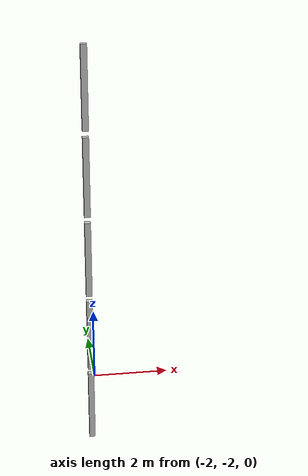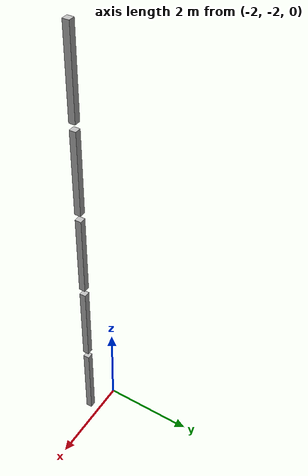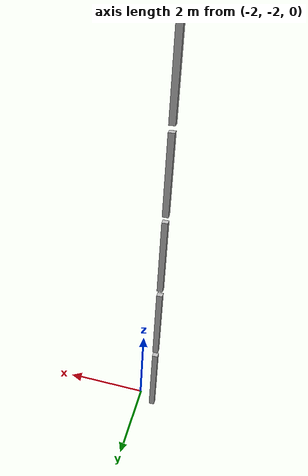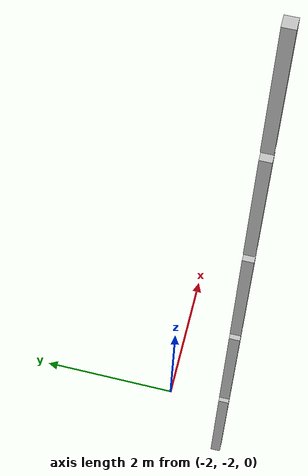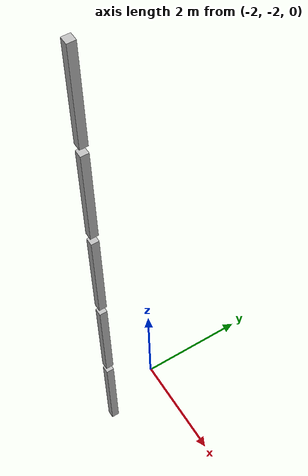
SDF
<sdf version="1.7">
 <world name="default">
  <model name="orthogonal_747_2.000.15_TS">
   <static>1</static>
   <link name="z_link_1_1_2">
    <inertial>
     <mass>1</mass>
     <inertia>
      <ixx>0.166667</ixx>
      <ixy>0</ixy>
      <ixz>0</ixz>
      <iyy>0.166667</iyy>
      <iyz>0</iyz>
      <izz>0.166667</izz>
     </inertia>
    </inertial>
    <pose>4.3 2.15 2.15 0 -0 0</pose>
    <visual name="visual_0">
     <laser_retro>1030</laser_retro>
     <geometry><box><size>0.15 1e-06 2</size></box></geometry>
     <material>
      <script><name>Gazebo/Grey</name><uri>file://media/materials/scripts/gazebo.material</uri></script>
      <shader type="pixel"><normal_map>__default__</normal_map></shader>
      <ambient>0.678 0.498 0.659 1</ambient>
      <diffuse>0.7 0.7 0.7 1</diffuse>
      <specular>0.01 0.01 0.01 1</specular>
      <emissive>0 0 0 1</emissive>
     </material>
     <pose>0 -0.075 0 0 -0 0</pose>
     <transparency>1</transparency>
    </visual>
    <visual name="visual_1">
     <laser_retro>1031</laser_retro>
     <geometry><box><size>0.15 1e-06 2</size></box></geometry>
     <material>
      <script><name>Gazebo/Grey</name><uri>file://media/materials/scripts/gazebo.material</uri></script>
      <shader type="pixel"><normal_map>__default__</normal_map></shader>
      <ambient>0.447 0.624 0.812 1</ambient>
      <diffuse>0.7 0.7 0.7 1</diffuse>
      <specular>0.01 0.01 0.01 1</specular>
      <emissive>0 0 0 1</emissive>
     </material>
     <pose>0 0.075 0 0 -0 0</pose>
     <transparency>1</transparency>
    </visual>
    <visual name="visual_2">
     <laser_retro>1032</laser_retro>
     <geometry><box><size>0.15 0.15 1e-06</size></box></geometry>
     <material>
      <script><name>Gazebo/Grey</name><uri>file://media/materials/scripts/gazebo.material</uri></script>
      <shader type="pixel"><normal_map>__default__</normal_map></shader>
      <ambient>0.988 0.686 0.243 1</ambient>
      <diffuse>0.7 0.7 0.7 1</diffuse>
      <specular>0.01 0.01 0.01 1</specular>
      <emissive>0 0 0 1</emissive>
     </material>
     <pose>0 0 -1 0 -0 0</pose>
     <transparency>1</transparency>
    </visual>
    <visual name="visual_3">
     <laser_retro>1033</laser_retro>
     <geometry><box><size>1e-06 0.15 2</size></box></geometry>
     <material>
      <script><name>Gazebo/Grey</name><uri>file://media/materials/scripts/gazebo.material</uri></script>
      <shader type="pixel"><normal_map>__default__</normal_map></shader>
      <ambient>0.988 0.914 0.31 1</ambient>
      <diffuse>0.7 0.7 0.7 1</diffuse>
      <specular>0.01 0.01 0.01 1</specular>
      <emissive>0 0 0 1</emissive>
     </material>
     <pose>0.075 0 0 0 -0 0</pose>
     <transparency>1</transparency>
    </visual>
    <visual name="visual_4">
     <laser_retro>1034</laser_retro>
     <geometry><box><size>0.15 0.15 1e-06</size></box></geometry>
     <material>
      <script><name>Gazebo/Grey</name><uri>file://media/materials/scripts/gazebo.material</uri></script>
      <shader type="pixel"><normal_map>__default__</normal_map></shader>
      <ambient>0.937 0.161 0.161 1</ambient>
      <diffuse>0.7 0.7 0.7 1</diffuse>
      <specular>0.01 0.01 0.01 1</specular>
      <emissive>0 0 0 1</emissive>
     </material>
     <pose>0 0 1 0 -0 0</pose>
     <transparency>1</transparency>
    </visual>
    <visual name="visual_5">
     <laser_retro>1035</laser_retro>
     <geometry><box><size>1e-06 0.15 2</size></box></geometry>
     <material>
      <script><name>Gazebo/Grey</name><uri>file://media/materials/scripts/gazebo.material</uri></script>
      <shader type="pixel"><normal_map>__default__</normal_map></shader>
      <ambient>0.541 0.886 0.204 1</ambient>
      <diffuse>0.7 0.7 0.7 1</diffuse>
      <specular>0.01 0.01 0.01 1</specular>
      <emissive>0 0 0 1</emissive>
     </material>
     <pose>-0.075 0 0 0 -0 0</pose>
     <transparency>1</transparency>
    </visual>
    <visual name="visual_texture">
     <geometry><box><size>0.149985 0.149985 1.9998</size></box></geometry>
     <material>
      <script>
       <uri>model://BASE_MODELS/simple_block_v2_textured/materials/scripts</uri>
       <uri>model://BASE_MODELS/simple_block_v2_textured/materials/textures</uri>
       <name>metal</name>
      </script>
     </material>
     <laser_retro>1036</laser_retro>
    </visual>
    <collision name="collision">
     <geometry><box><size>0.15 0.15 2</size></box></geometry>
     <surface>
      <friction>
       <ode><mu>1</mu><mu2>1</mu2><fdir1>0 0 0</fdir1><slip1>0</slip1><slip2>0</slip2></ode>
       <torsional>
        <coefficient>1</coefficient>
        <patch_radius>0</patch_radius>
        <surface_radius>0</surface_radius>
        <use_patch_radius>1</use_patch_radius>
        <ode><slip>0</slip></ode>
       </torsional>
      </friction>
      <bounce><restitution_coefficient>0</restitution_coefficient><threshold>1e+06</threshold></bounce>
      <contact>
       <collide_without_contact>0</collide_without_contact>
       <collide_without_contact_bitmask>1</collide_without_contact_bitmask>
       <collide_bitmask>1</collide_bitmask>
       <ode>
        <soft_cfm>0</soft_cfm>
        <soft_erp>0.2</soft_erp>
        <kp>1e+13</kp>
        <kd>1</kd>
        <max_vel>0.01</max_vel>
        <min_depth>0</min_depth>
       </ode>
       <bullet>
        <split_impulse>1</split_impulse>
        <split_impulse_penetration_threshold>-0.01</split_impulse_penetration_threshold>
        <soft_cfm>0</soft_cfm>
        <soft_erp>0.2</soft_erp>
        <kp>1e+13</kp>
        <kd>1</kd>
       </bullet>
      </contact>
     </surface>
    </collision>
   </link>
   <link name="z_link_2_1_2">
    <inertial>
     <mass>1</mass>
     <inertia>
      <ixx>0.166667</ixx>
      <ixy>0</ixy>
      <ixz>0</ixz>
      <iyy>0.166667</iyy>
      <iyz>0</iyz>
      <izz>0.166667</izz>
     </inertia>
    </inertial>
    <pose>4.3 2.15 4.3 0 -0 0</pose>
    <visual name="visual_0">
     <laser_retro>1933</laser_retro>
     <geometry><box><size>0.15 1e-06 2</size></box></geometry>
     <material>
      <script><name>Gazebo/Grey</name><uri>file://media/materials/scripts/gazebo.material</uri></script>
      <shader type="pixel"><normal_map>__default__</normal_map></shader>
      <ambient>0.678 0.498 0.659 1</ambient>
      <diffuse>0.7 0.7 0.7 1</diffuse>
      <specular>0.01 0.01 0.01 1</specular>
      <emissive>0 0 0 1</emissive>
     </material>
     <pose>0 -0.075 0 0 -0 0</pose>
     <transparency>1</transparency>
    </visual>
    <visual name="visual_1">
     <laser_retro>1934</laser_retro>
     <geometry><box><size>0.15 1e-06 2</size></box></geometry>
     <material>
      <script><name>Gazebo/Grey</name><uri>file://media/materials/scripts/gazebo.material</uri></script>
      <shader type="pixel"><normal_map>__default__</normal_map></shader>
      <ambient>0.447 0.624 0.812 1</ambient>
      <diffuse>0.7 0.7 0.7 1</diffuse>
      <specular>0.01 0.01 0.01 1</specular>
      <emissive>0 0 0 1</emissive>
     </material>
     <pose>0 0.075 0 0 -0 0</pose>
     <transparency>1</transparency>
    </visual>
    <visual name="visual_2">
     <laser_retro>1935</laser_retro>
     <geometry><box><size>0.15 0.15 1e-06</size></box></geometry>
     <material>
      <script><name>Gazebo/Grey</name><uri>file://media/materials/scripts/gazebo.material</uri></script>
      <shader type="pixel"><normal_map>__default__</normal_map></shader>
      <ambient>0.988 0.686 0.243 1</ambient>
      <diffuse>0.7 0.7 0.7 1</diffuse>
      <specular>0.01 0.01 0.01 1</specular>
      <emissive>0 0 0 1</emissive>
     </material>
     <pose>0 0 -1 0 -0 0</pose>
     <transparency>1</transparency>
    </visual>
    <visual name="visual_3">
     <laser_retro>1936</laser_retro>
     <geometry><box><size>1e-06 0.15 2</size></box></geometry>
     <material>
      <script><name>Gazebo/Grey</name><uri>file://media/materials/scripts/gazebo.material</uri></script>
      <shader type="pixel"><normal_map>__default__</normal_map></shader>
      <ambient>0.988 0.914 0.31 1</ambient>
      <diffuse>0.7 0.7 0.7 1</diffuse>
      <specular>0.01 0.01 0.01 1</specular>
      <emissive>0 0 0 1</emissive>
     </material>
     <pose>0.075 0 0 0 -0 0</pose>
     <transparency>1</transparency>
    </visual>
    <visual name="visual_4">
     <laser_retro>1937</laser_retro>
     <geometry><box><size>0.15 0.15 1e-06</size></box></geometry>
     <material>
      <script><name>Gazebo/Grey</name><uri>file://media/materials/scripts/gazebo.material</uri></script>
      <shader type="pixel"><normal_map>__default__</normal_map></shader>
      <ambient>0.937 0.161 0.161 1</ambient>
      <diffuse>0.7 0.7 0.7 1</diffuse>
      <specular>0.01 0.01 0.01 1</specular>
      <emissive>0 0 0 1</emissive>
     </material>
     <pose>0 0 1 0 -0 0</pose>
     <transparency>1</transparency>
    </visual>
    <visual name="visual_5">
     <laser_retro>1938</laser_retro>
     <geometry><box><size>1e-06 0.15 2</size></box></geometry>
     <material>
      <script><name>Gazebo/Grey</name><uri>file://media/materials/scripts/gazebo.material</uri></script>
      <shader type="pixel"><normal_map>__default__</normal_map></shader>
      <ambient>0.541 0.886 0.204 1</ambient>
      <diffuse>0.7 0.7 0.7 1</diffuse>
      <specular>0.01 0.01 0.01 1</specular>
      <emissive>0 0 0 1</emissive>
     </material>
     <pose>-0.075 0 0 0 -0 0</pose>
     <transparency>1</transparency>
    </visual>
    <visual name="visual_texture">
     <geometry><box><size>0.149985 0.149985 1.9998</size></box></geometry>
     <material>
      <script>
       <uri>model://BASE_MODELS/simple_block_v2_textured/materials/scripts</uri>
       <uri>model://BASE_MODELS/simple_block_v2_textured/materials/textures</uri>
       <name>metal</name>
      </script>
     </material>
     <laser_retro>1939</laser_retro>
    </visual>
    <collision name="collision">
     <geometry><box><size>0.15 0.15 2</size></box></geometry>
     <surface>
      <friction>
       <ode><mu>1</mu><mu2>1</mu2><fdir1>0 0 0</fdir1><slip1>0</slip1><slip2>0</slip2></ode>
       <torsional>
        <coefficient>1</coefficient>
        <patch_radius>0</patch_radius>
        <surface_radius>0</surface_radius>
        <use_patch_radius>1</use_patch_radius>
        <ode><slip>0</slip></ode>
       </torsional>
      </friction>
      <bounce><restitution_coefficient>0</restitution_coefficient><threshold>1e+06</threshold></bounce>
      <contact>
       <collide_without_contact>0</collide_without_contact>
       <collide_without_contact_bitmask>1</collide_without_contact_bitmask>
       <collide_bitmask>1</collide_bitmask>
       <ode>
        <soft_cfm>0</soft_cfm>
        <soft_erp>0.2</soft_erp>
        <kp>1e+13</kp>
        <kd>1</kd>
        <max_vel>0.01</max_vel>
        <min_depth>0</min_depth>
       </ode>
       <bullet>
        <split_impulse>1</split_impulse>
        <split_impulse_penetration_threshold>-0.01</split_impulse_penetration_threshold>
        <soft_cfm>0</soft_cfm>
        <soft_erp>0.2</soft_erp>
        <kp>1e+13</kp>
        <kd>1</kd>
       </bullet>
      </contact>
     </surface>
    </collision>
   </link>
   <link name="z_link_3_1_2">
    <inertial>
     <mass>1</mass>
     <inertia>
      <ixx>0.166667</ixx>
      <ixy>0</ixy>
      <ixz>0</ixz>
      <iyy>0.166667</iyy>
      <iyz>0</iyz>
      <izz>0.166667</izz>
     </inertia>
    </inertial>
    <pose>4.3 2.15 6.45 0 -0 0</pose>
    <visual name="visual_0">
     <laser_retro>2836</laser_retro>
     <geometry><box><size>0.15 1e-06 2</size></box></geometry>
     <material>
      <script><name>Gazebo/Grey</name><uri>file://media/materials/scripts/gazebo.material</uri></script>
      <shader type="pixel"><normal_map>__default__</normal_map></shader>
      <ambient>0.678 0.498 0.659 1</ambient>
      <diffuse>0.7 0.7 0.7 1</diffuse>
      <specular>0.01 0.01 0.01 1</specular>
      <emissive>0 0 0 1</emissive>
     </material>
     <pose>0 -0.075 0 0 -0 0</pose>
     <transparency>1</transparency>
    </visual>
    <visual name="visual_1">
     <laser_retro>2837</laser_retro>
     <geometry><box><size>0.15 1e-06 2</size></box></geometry>
     <material>
      <script><name>Gazebo/Grey</name><uri>file://media/materials/scripts/gazebo.material</uri></script>
      <shader type="pixel"><normal_map>__default__</normal_map></shader>
      <ambient>0.447 0.624 0.812 1</ambient>
      <diffuse>0.7 0.7 0.7 1</diffuse>
      <specular>0.01 0.01 0.01 1</specular>
      <emissive>0 0 0 1</emissive>
     </material>
     <pose>0 0.075 0 0 -0 0</pose>
     <transparency>1</transparency>
    </visual>
    <visual name="visual_2">
     <laser_retro>2838</laser_retro>
     <geometry><box><size>0.15 0.15 1e-06</size></box></geometry>
     <material>
      <script><name>Gazebo/Grey</name><uri>file://media/materials/scripts/gazebo.material</uri></script>
      <shader type="pixel"><normal_map>__default__</normal_map></shader>
      <ambient>0.988 0.686 0.243 1</ambient>
      <diffuse>0.7 0.7 0.7 1</diffuse>
      <specular>0.01 0.01 0.01 1</specular>
      <emissive>0 0 0 1</emissive>
     </material>
     <pose>0 0 -1 0 -0 0</pose>
     <transparency>1</transparency>
    </visual>
    <visual name="visual_3">
     <laser_retro>2839</laser_retro>
     <geometry><box><size>1e-06 0.15 2</size></box></geometry>
     <material>
      <script><name>Gazebo/Grey</name><uri>file://media/materials/scripts/gazebo.material</uri></script>
      <shader type="pixel"><normal_map>__default__</normal_map></shader>
      <ambient>0.988 0.914 0.31 1</ambient>
      <diffuse>0.7 0.7 0.7 1</diffuse>
      <specular>0.01 0.01 0.01 1</specular>
      <emissive>0 0 0 1</emissive>
     </material>
     <pose>0.075 0 0 0 -0 0</pose>
     <transparency>1</transparency>
    </visual>
    <visual name="visual_4">
     <laser_retro>2840</laser_retro>
     <geometry><box><size>0.15 0.15 1e-06</size></box></geometry>
     <material>
      <script><name>Gazebo/Grey</name><uri>file://media/materials/scripts/gazebo.material</uri></script>
      <shader type="pixel"><normal_map>__default__</normal_map></shader>
      <ambient>0.937 0.161 0.161 1</ambient>
      <diffuse>0.7 0.7 0.7 1</diffuse>
      <specular>0.01 0.01 0.01 1</specular>
      <emissive>0 0 0 1</emissive>
     </material>
     <pose>0 0 1 0 -0 0</pose>
     <transparency>1</transparency>
    </visual>
    <visual name="visual_5">
     <laser_retro>2841</laser_retro>
     <geometry><box><size>1e-06 0.15 2</size></box></geometry>
     <material>
      <script><name>Gazebo/Grey</name><uri>file://media/materials/scripts/gazebo.material</uri></script>
      <shader type="pixel"><normal_map>__default__</normal_map></shader>
      <ambient>0.541 0.886 0.204 1</ambient>
      <diffuse>0.7 0.7 0.7 1</diffuse>
      <specular>0.01 0.01 0.01 1</specular>
      <emissive>0 0 0 1</emissive>
     </material>
     <pose>-0.075 0 0 0 -0 0</pose>
     <transparency>1</transparency>
    </visual>
    <visual name="visual_texture">
     <geometry><box><size>0.149985 0.149985 1.9998</size></box></geometry>
     <material>
      <script>
       <uri>model://BASE_MODELS/simple_block_v2_textured/materials/scripts</uri>
       <uri>model://BASE_MODELS/simple_block_v2_textured/materials/textures</uri>
       <name>metal</name>
      </script>
     </material>
     <laser_retro>2842</laser_retro>
    </visual>
    <collision name="collision">
     <geometry><box><size>0.15 0.15 2</size></box></geometry>
     <surface>
      <friction>
       <ode><mu>1</mu><mu2>1</mu2><fdir1>0 0 0</fdir1><slip1>0</slip1><slip2>0</slip2></ode>
       <torsional>
        <coefficient>1</coefficient>
        <patch_radius>0</patch_radius>
        <surface_radius>0</surface_radius>
        <use_patch_radius>1</use_patch_radius>
        <ode><slip>0</slip></ode>
       </torsional>
      </friction>
      <bounce><restitution_coefficient>0</restitution_coefficient><threshold>1e+06</threshold></bounce>
      <contact>
       <collide_without_contact>0</collide_without_contact>
       <collide_without_contact_bitmask>1</collide_without_contact_bitmask>
       <collide_bitmask>1</collide_bitmask>
       <ode>
        <soft_cfm>0</soft_cfm>
        <soft_erp>0.2</soft_erp>
        <kp>1e+13</kp>
        <kd>1</kd>
        <max_vel>0.01</max_vel>
        <min_depth>0</min_depth>
       </ode>
       <bullet>
        <split_impulse>1</split_impulse>
        <split_impulse_penetration_threshold>-0.01</split_impulse_penetration_threshold>
        <soft_cfm>0</soft_cfm>
        <soft_erp>0.2</soft_erp>
        <kp>1e+13</kp>
        <kd>1</kd>
       </bullet>
      </contact>
     </surface>
    </collision>
   </link>
   <link name="z_link_4_1_2">
    <inertial>
     <mass>1</mass>
     <inertia>
      <ixx>0.166667</ixx>
      <ixy>0</ixy>
      <ixz>0</ixz>
      <iyy>0.166667</iyy>
      <iyz>0</iyz>
      <izz>0.166667</izz>
     </inertia>
    </inertial>
    <pose>4.3 2.15 8.6 0 -0 0</pose>
    <visual name="visual_0">
     <laser_retro>3739</laser_retro>
     <geometry><box><size>0.15 1e-06 2</size></box></geometry>
     <material>
      <script><name>Gazebo/Grey</name><uri>file://media/materials/scripts/gazebo.material</uri></script>
      <shader type="pixel"><normal_map>__default__</normal_map></shader>
      <ambient>0.678 0.498 0.659 1</ambient>
      <diffuse>0.7 0.7 0.7 1</diffuse>
      <specular>0.01 0.01 0.01 1</specular>
      <emissive>0 0 0 1</emissive>
     </material>
     <pose>0 -0.075 0 0 -0 0</pose>
     <transparency>1</transparency>
    </visual>
    <visual name="visual_1">
     <laser_retro>3740</laser_retro>
     <geometry><box><size>0.15 1e-06 2</size></box></geometry>
     <material>
      <script><name>Gazebo/Grey</name><uri>file://media/materials/scripts/gazebo.material</uri></script>
      <shader type="pixel"><normal_map>__default__</normal_map></shader>
      <ambient>0.447 0.624 0.812 1</ambient>
      <diffuse>0.7 0.7 0.7 1</diffuse>
      <specular>0.01 0.01 0.01 1</specular>
      <emissive>0 0 0 1</emissive>
     </material>
     <pose>0 0.075 0 0 -0 0</pose>
     <transparency>1</transparency>
    </visual>
    <visual name="visual_2">
     <laser_retro>3741</laser_retro>
     <geometry><box><size>0.15 0.15 1e-06</size></box></geometry>
     <material>
      <script><name>Gazebo/Grey</name><uri>file://media/materials/scripts/gazebo.material</uri></script>
      <shader type="pixel"><normal_map>__default__</normal_map></shader>
      <ambient>0.988 0.686 0.243 1</ambient>
      <diffuse>0.7 0.7 0.7 1</diffuse>
      <specular>0.01 0.01 0.01 1</specular>
      <emissive>0 0 0 1</emissive>
     </material>
     <pose>0 0 -1 0 -0 0</pose>
     <transparency>1</transparency>
    </visual>
    <visual name="visual_3">
     <laser_retro>3742</laser_retro>
     <geometry><box><size>1e-06 0.15 2</size></box></geometry>
     <material>
      <script><name>Gazebo/Grey</name><uri>file://media/materials/scripts/gazebo.material</uri></script>
      <shader type="pixel"><normal_map>__default__</normal_map></shader>
      <ambient>0.988 0.914 0.31 1</ambient>
      <diffuse>0.7 0.7 0.7 1</diffuse>
      <specular>0.01 0.01 0.01 1</specular>
      <emissive>0 0 0 1</emissive>
     </material>
     <pose>0.075 0 0 0 -0 0</pose>
     <transparency>1</transparency>
    </visual>
    <visual name="visual_4">
     <laser_retro>3743</laser_retro>
     <geometry><box><size>0.15 0.15 1e-06</size></box></geometry>
     <material>
      <script><name>Gazebo/Grey</name><uri>file://media/materials/scripts/gazebo.material</uri></script>
      <shader type="pixel"><normal_map>__default__</normal_map></shader>
      <ambient>0.937 0.161 0.161 1</ambient>
      <diffuse>0.7 0.7 0.7 1</diffuse>
      <specular>0.01 0.01 0.01 1</specular>
      <emissive>0 0 0 1</emissive>
     </material>
     <pose>0 0 1 0 -0 0</pose>
     <transparency>1</transparency>
    </visual>
    <visual name="visual_5">
     <laser_retro>3744</laser_retro>
     <geometry><box><size>1e-06 0.15 2</size></box></geometry>
     <material>
      <script><name>Gazebo/Grey</name><uri>file://media/materials/scripts/gazebo.material</uri></script>
      <shader type="pixel"><normal_map>__default__</normal_map></shader>
      <ambient>0.541 0.886 0.204 1</ambient>
      <diffuse>0.7 0.7 0.7 1</diffuse>
      <specular>0.01 0.01 0.01 1</specular>
      <emissive>0 0 0 1</emissive>
     </material>
     <pose>-0.075 0 0 0 -0 0</pose>
     <transparency>1</transparency>
    </visual>
    <visual name="visual_texture">
     <geometry><box><size>0.149985 0.149985 1.9998</size></box></geometry>
     <material>
      <script>
       <uri>model://BASE_MODELS/simple_block_v2_textured/materials/scripts</uri>
       <uri>model://BASE_MODELS/simple_block_v2_textured/materials/textures</uri>
       <name>metal</name>
      </script>
     </material>
     <laser_retro>3745</laser_retro>
    </visual>
    <collision name="collision">
     <geometry><box><size>0.15 0.15 2</size></box></geometry>
     <surface>
      <friction>
       <ode><mu>1</mu><mu2>1</mu2><fdir1>0 0 0</fdir1><slip1>0</slip1><slip2>0</slip2></ode>
       <torsional>
        <coefficient>1</coefficient>
        <patch_radius>0</patch_radius>
        <surface_radius>0</surface_radius>
        <use_patch_radius>1</use_patch_radius>
        <ode><slip>0</slip></ode>
       </torsional>
      </friction>
      <bounce><restitution_coefficient>0</restitution_coefficient><threshold>1e+06</threshold></bounce>
      <contact>
       <collide_without_contact>0</collide_without_contact>
       <collide_without_contact_bitmask>1</collide_without_contact_bitmask>
       <collide_bitmask>1</collide_bitmask>
       <ode>
        <soft_cfm>0</soft_cfm>
        <soft_erp>0.2</soft_erp>
        <kp>1e+13</kp>
        <kd>1</kd>
        <max_vel>0.01</max_vel>
        <min_depth>0</min_depth>
       </ode>
       <bullet>
        <split_impulse>1</split_impulse>
        <split_impulse_penetration_threshold>-0.01</split_impulse_penetration_threshold>
        <soft_cfm>0</soft_cfm>
        <soft_erp>0.2</soft_erp>
        <kp>1e+13</kp>
        <kd>1</kd>
       </bullet>
      </contact>
     </surface>
    </collision>
   </link>
   <link name="z_link_5_1_2">
    <inertial>
     <mass>1</mass>
     <inertia>
      <ixx>0.166667</ixx>
      <ixy>0</ixy>
      <ixz>0</ixz>
      <iyy>0.166667</iyy>
      <iyz>0</iyz>
      <izz>0.166667</izz>
     </inertia>
    </inertial>
    <pose>4.3 2.15 10.75 0 -0 0</pose>
    <visual name="visual_0">
     <laser_retro>4642</laser_retro>
     <geometry><box><size>0.15 1e-06 2</size></box></geometry>
     <material>
      <script><name>Gazebo/Grey</name><uri>file://media/materials/scripts/gazebo.material</uri></script>
      <shader type="pixel"><normal_map>__default__</normal_map></shader>
      <ambient>0.678 0.498 0.659 1</ambient>
      <diffuse>0.7 0.7 0.7 1</diffuse>
      <specular>0.01 0.01 0.01 1</specular>
      <emissive>0 0 0 1</emissive>
     </material>
     <pose>0 -0.075 0 0 -0 0</pose>
     <transparency>1</transparency>
    </visual>
    <visual name="visual_1">
     <laser_retro>4643</laser_retro>
     <geometry><box><size>0.15 1e-06 2</size></box></geometry>
     <material>
      <script><name>Gazebo/Grey</name><uri>file://media/materials/scripts/gazebo.material</uri></script>
      <shader type="pixel"><normal_map>__default__</normal_map></shader>
      <ambient>0.447 0.624 0.812 1</ambient>
      <diffuse>0.7 0.7 0.7 1</diffuse>
      <specular>0.01 0.01 0.01 1</specular>
      <emissive>0 0 0 1</emissive>
     </material>
     <pose>0 0.075 0 0 -0 0</pose>
     <transparency>1</transparency>
    </visual>
    <visual name="visual_2">
     <laser_retro>4644</laser_retro>
     <geometry><box><size>0.15 0.15 1e-06</size></box></geometry>
     <material>
      <script><name>Gazebo/Grey</name><uri>file://media/materials/scripts/gazebo.material</uri></script>
      <shader type="pixel"><normal_map>__default__</normal_map></shader>
      <ambient>0.988 0.686 0.243 1</ambient>
      <diffuse>0.7 0.7 0.7 1</diffuse>
      <specular>0.01 0.01 0.01 1</specular>
      <emissive>0 0 0 1</emissive>
     </material>
     <pose>0 0 -1 0 -0 0</pose>
     <transparency>1</transparency>
    </visual>
    <visual name="visual_3">
     <laser_retro>4645</laser_retro>
     <geometry><box><size>1e-06 0.15 2</size></box></geometry>
     <material>
      <script><name>Gazebo/Grey</name><uri>file://media/materials/scripts/gazebo.material</uri></script>
      <shader type="pixel"><normal_map>__default__</normal_map></shader>
      <ambient>0.988 0.914 0.31 1</ambient>
      <diffuse>0.7 0.7 0.7 1</diffuse>
      <specular>0.01 0.01 0.01 1</specular>
      <emissive>0 0 0 1</emissive>
     </material>
     <pose>0.075 0 0 0 -0 0</pose>
     <transparency>1</transparency>
    </visual>
    <visual name="visual_4">
     <laser_retro>4646</laser_retro>
     <geometry><box><size>0.15 0.15 1e-06</size></box></geometry>
     <material>
      <script><name>Gazebo/Grey</name><uri>file://media/materials/scripts/gazebo.material</uri></script>
      <shader type="pixel"><normal_map>__default__</normal_map></shader>
      <ambient>0.937 0.161 0.161 1</ambient>
      <diffuse>0.7 0.7 0.7 1</diffuse>
      <specular>0.01 0.01 0.01 1</specular>
      <emissive>0 0 0 1</emissive>
     </material>
     <pose>0 0 1 0 -0 0</pose>
     <transparency>1</transparency>
    </visual>
    <visual name="visual_5">
     <laser_retro>4647</laser_retro>
     <geometry><box><size>1e-06 0.15 2</size></box></geometry>
     <material>
      <script><name>Gazebo/Grey</name><uri>file://media/materials/scripts/gazebo.material</uri></script>
      <shader type="pixel"><normal_map>__default__</normal_map></shader>
      <ambient>0.541 0.886 0.204 1</ambient>
      <diffuse>0.7 0.7 0.7 1</diffuse>
      <specular>0.01 0.01 0.01 1</specular>
      <emissive>0 0 0 1</emissive>
     </material>
     <pose>-0.075 0 0 0 -0 0</pose>
     <transparency>1</transparency>
    </visual>
    <visual name="visual_texture">
     <geometry><box><size>0.149985 0.149985 1.9998</size></box></geometry>
     <material>
      <script>
       <uri>model://BASE_MODELS/simple_block_v2_textured/materials/scripts</uri>
       <uri>model://BASE_MODELS/simple_block_v2_textured/materials/textures</uri>
       <name>metal</name>
      </script>
     </material>
     <laser_retro>4648</laser_retro>
    </visual>
    <collision name="collision">
     <geometry><box><size>0.15 0.15 2</size></box></geometry>
     <surface>
      <friction>
       <ode><mu>1</mu><mu2>1</mu2><fdir1>0 0 0</fdir1><slip1>0</slip1><slip2>0</slip2></ode>
       <torsional>
        <coefficient>1</coefficient>
        <patch_radius>0</patch_radius>
        <surface_radius>0</surface_radius>
        <use_patch_radius>1</use_patch_radius>
        <ode><slip>0</slip></ode>
       </torsional>
      </friction>
      <bounce><restitution_coefficient>0</restitution_coefficient><threshold>1e+06</threshold></bounce>
      <contact>
       <collide_without_contact>0</collide_without_contact>
       <collide_without_contact_bitmask>1</collide_without_contact_bitmask>
       <collide_bitmask>1</collide_bitmask>
       <ode>
        <soft_cfm>0</soft_cfm>
        <soft_erp>0.2</soft_erp>
        <kp>1e+13</kp>
        <kd>1</kd>
        <max_vel>0.01</max_vel>
        <min_depth>0</min_depth>
       </ode>
       <bullet>
        <split_impulse>1</split_impulse>
        <split_impulse_penetration_threshold>-0.01</split_impulse_penetration_threshold>
        <soft_cfm>0</soft_cfm>
        <soft_erp>0.2</soft_erp>
        <kp>1e+13</kp>
        <kd>1</kd>
       </bullet>
      </contact>
     </surface>
    </collision>
   </link>
   <pose>-6.47624 -5 -2.5 0 -0 0</pose>
  </model>
 </world>
</sdf>
